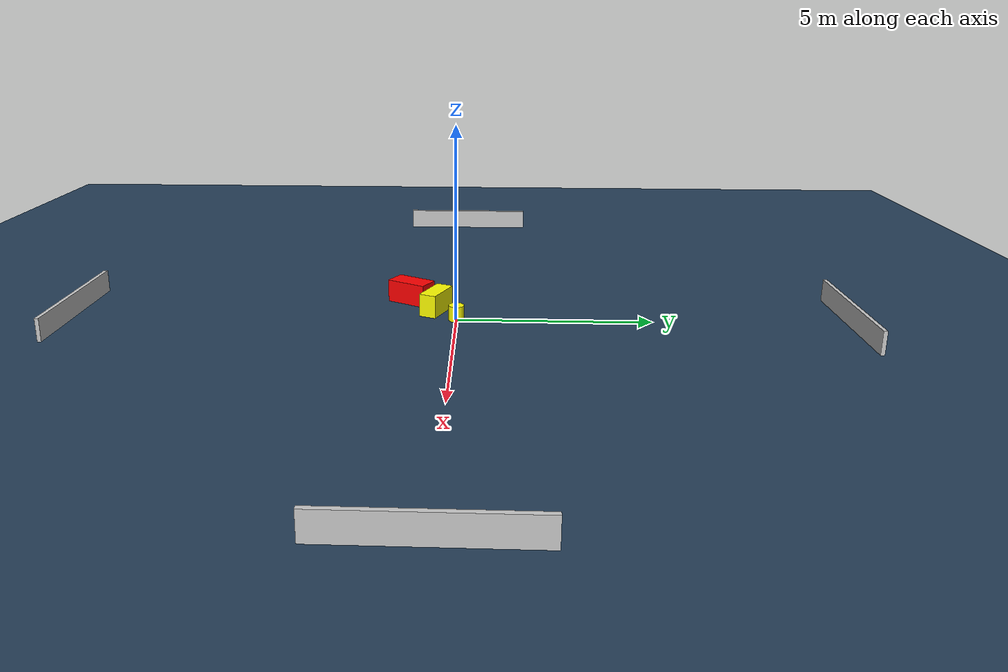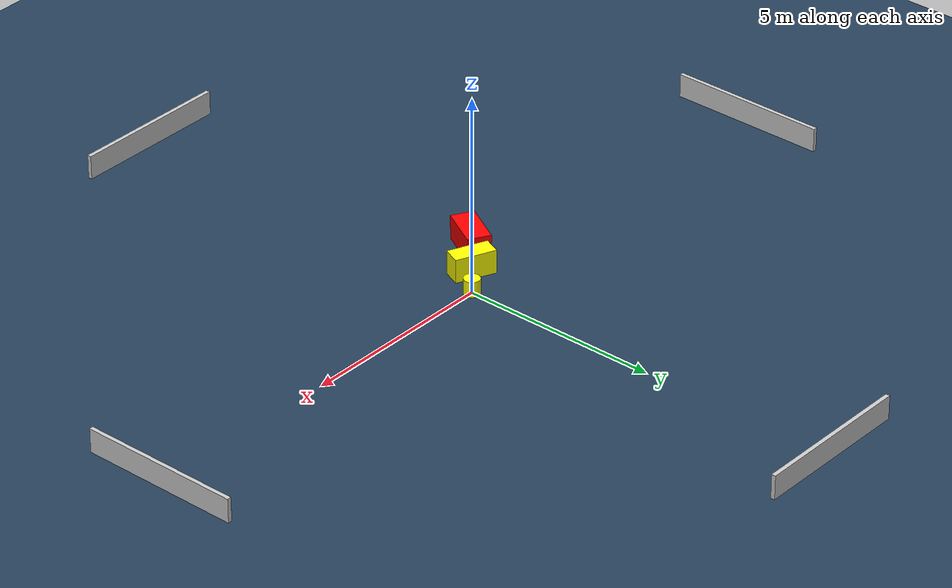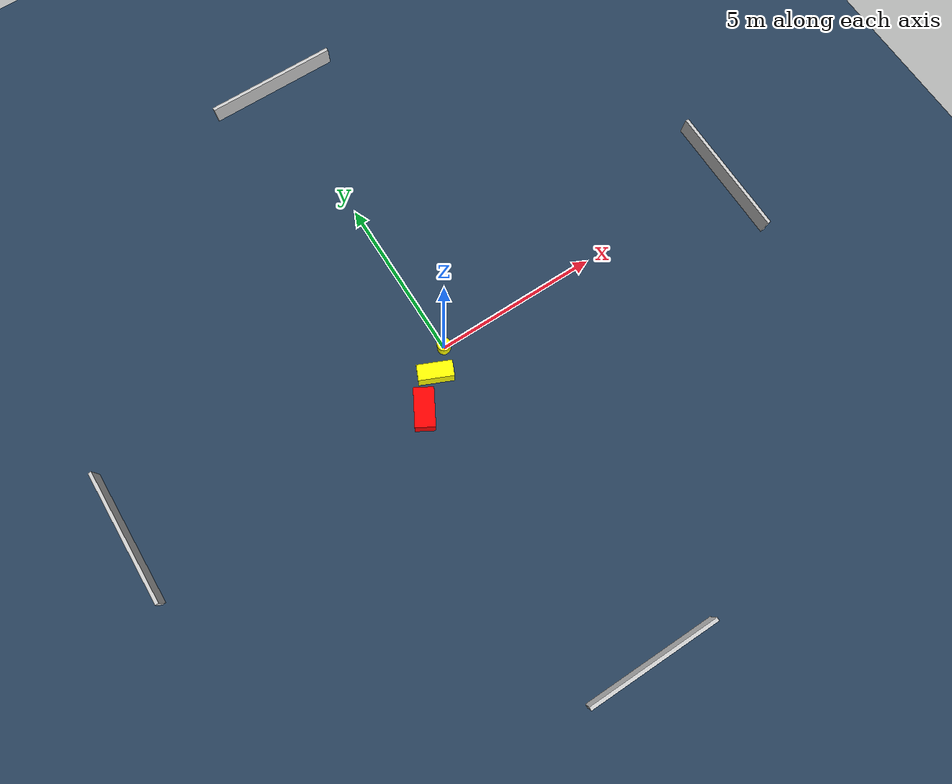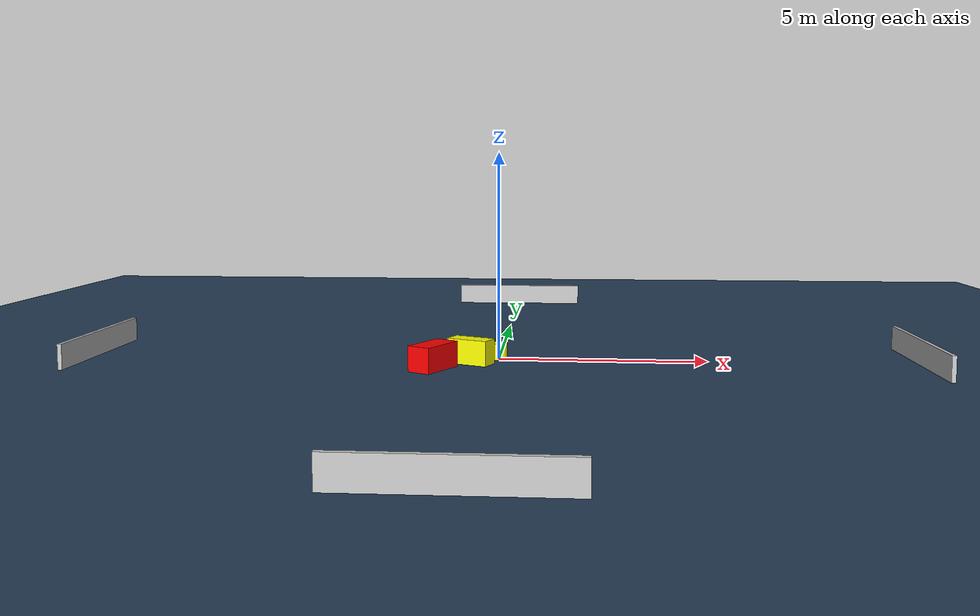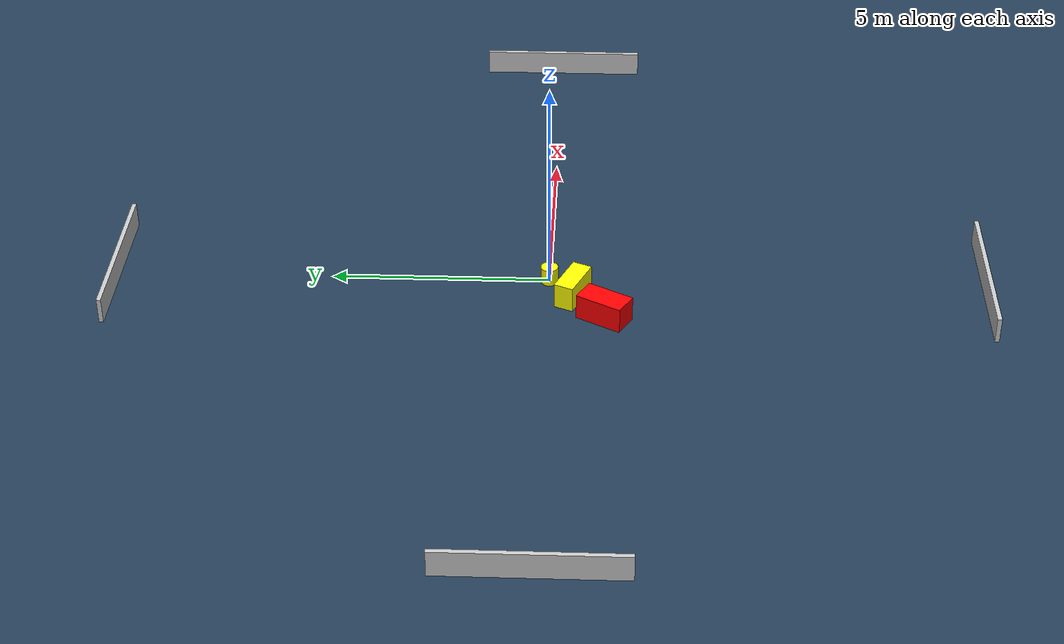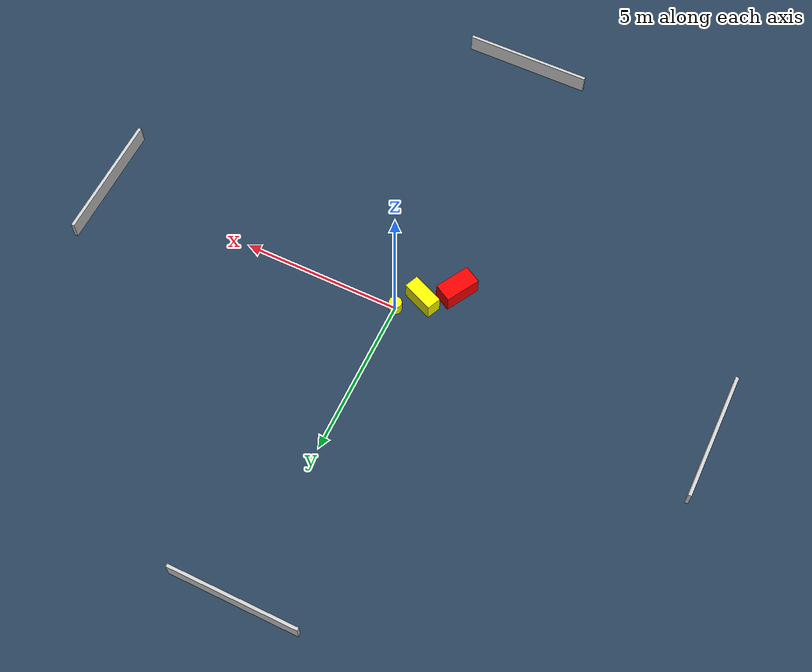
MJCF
<?xml version="1.0" ?>
<mujoco model="generated_environment">
  <option timestep="0.01" integrator="RK4" cone="elliptic"/>
  <default>
    <geom density="1"/>
  </default>
  <asset>
    <texture builtin="gradient" height="3072" name="skybox" rgb1="0.3 0.5 0.7" rgb2="0 0 0" type="skybox" width="512"/>
    <texture builtin="checker" height="300" name="groundplane" rgb1="0.2 0.3 0.4" rgb2="0.1 0.2 0.3" type="2d" width="300"/>
    <material name="groundplane" reflectance="0.2" texrepeat="5 5" texture="groundplane"/>
  </asset>
  <worldbody>
    <light dir="0 0 -1" directional="true" pos="0 0 1.5"/>
    <geom condim="3" friction="0.5 0.005 0.001" material="groundplane" name="floor" pos="0 0 0" size="0 0 0.05" type="plane"/>
    <body name="walls">
      <geom name="wall_1" condim="4" pos="-10.0 0.0 0.3" rgba="0.800000011920929 0.800000011920929 0.800000011920929 1.0" size="0.05 2.0 0.3" type="box"/>
      <geom name="wall_2" condim="4" pos="10.0 0.0 0.3" rgba="0.800000011920929 0.800000011920929 0.800000011920929 1.0" size="0.05 2.0 0.3" type="box"/>
      <geom name="wall_3" condim="4" pos="0.0 -10.0 0.3" rgba="0.800000011920929 0.800000011920929 0.800000011920929 1.0" size="2.0 0.05 0.3" type="box"/>
      <geom name="wall_4" condim="4" pos="0.0 10.0 0.3" rgba="0.800000011920929 0.800000011920929 0.800000011920929 1.0" size="2.0 0.05 0.3" type="box"/>
    </body>
    <body name="robot">
      <joint name="joint_x" type="slide" pos="0 0 0" axis="1 0 0"/>
      <joint name="joint_y" type="slide" pos="0 0 0" axis="0 1 0"/>
      <geom name="robot" type="cylinder" pos="0.0 0.0 0.2" size="0.2 0.2 0.0" mass="5.0" friction="1.0 0.005 0.0001" condim="4" rgba="1.0 1.0 0.0 1.0"/>
    </body>
    <body name="obstacle_1_movable">
      <geom name="obstacle_1_movable" condim="4" pos="-0.6348902739183352 -0.5576293168410977 0.3" euler="0 0 66.38729765351039" friction="0.0 0.005 0.001" rgba="1.0 1.0 0.0 1.0" size="0.22904636813302065 0.5120834995261274 0.3" type="box" mass="0.1"/>
      <joint type="free"/>
    </body>
    <body name="obstacle_2_static">
      <geom name="obstacle_2_static" condim="4" pos="-1.4454123329928577 -1.2825025756691293 0.3" euler="0 0 240.71021610293815" friction="0.0 0.005 0.001" rgba="1.0 0.0 0.0 1.0" size="0.5630721464223563 0.2918531730216334 0.3" type="box"/>
    </body>
  </worldbody>
  <actuator>
    <motor name="actuator_x" joint="joint_x" gear="1" ctrlrange="-1 1"/>
    <motor name="actuator_y" joint="joint_y" gear="1" ctrlrange="-1 1"/>
  </actuator>
</mujoco>
